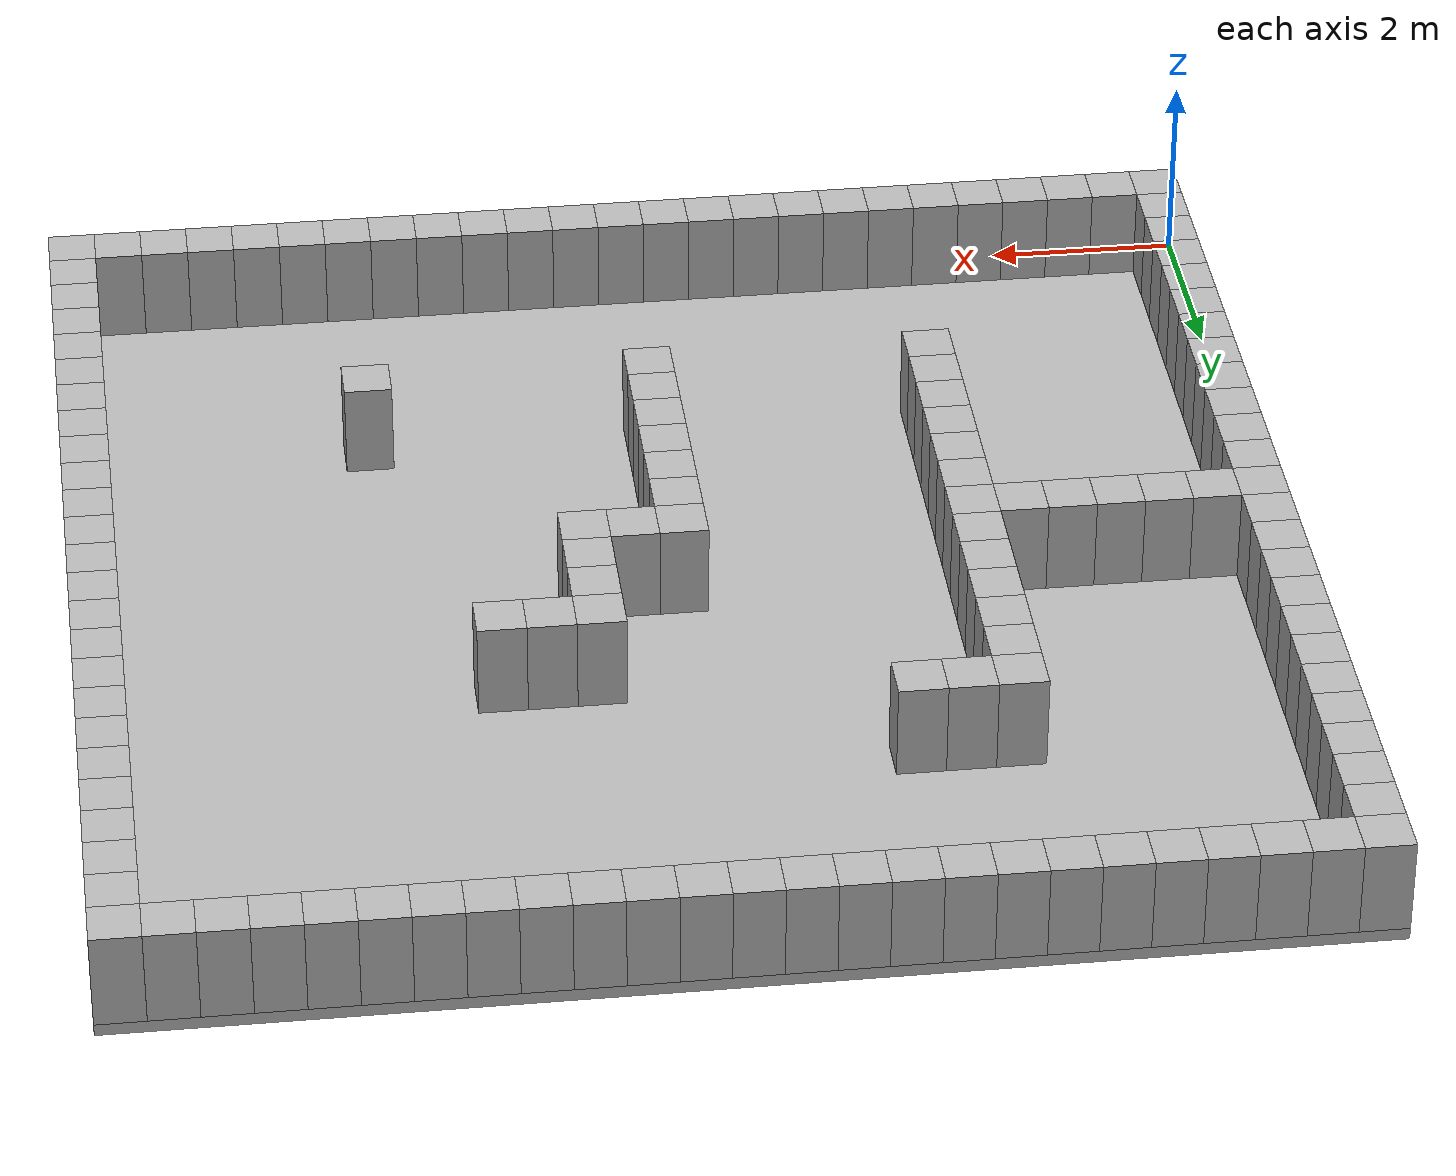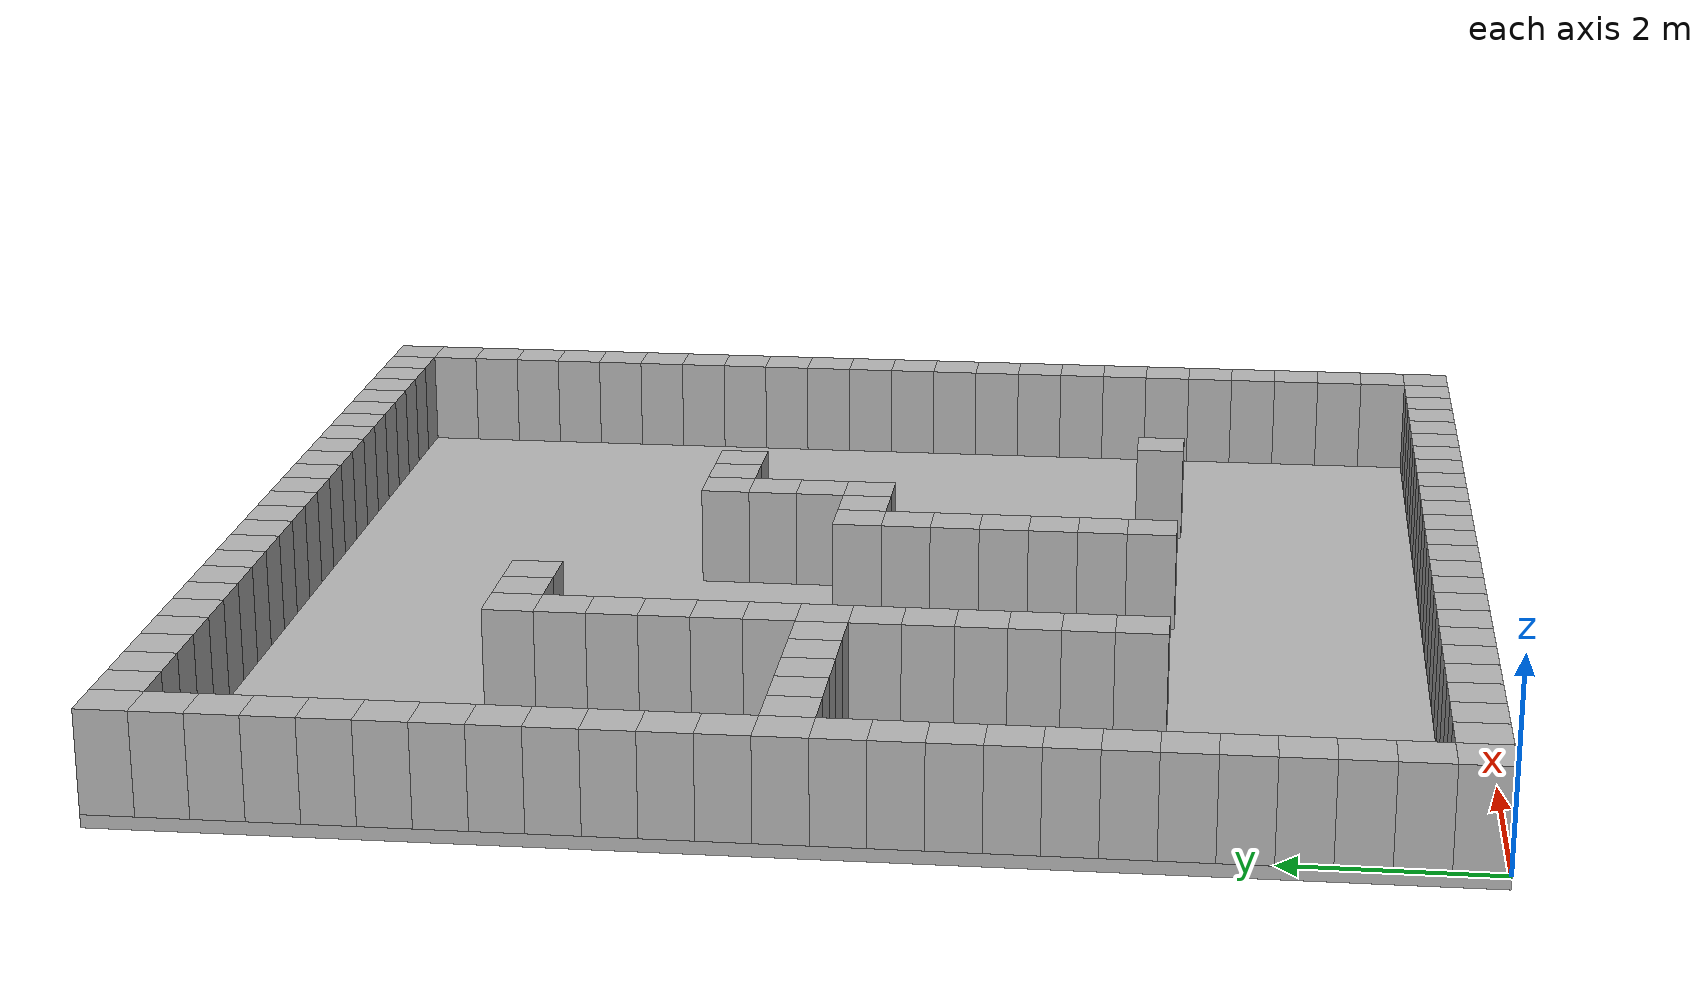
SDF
<sdf version="1.4">
  <world name="default">
    <light name="sun" type="directional">
      <cast_shadows>1</cast_shadows>
      <diffuse>0.8 0.8 0.8 1</diffuse>
      <specular>0.1 0.1 0.1 1</specular>
      <attenuation>
        <range>1000</range>
        <constant>0.9</constant>
        <linear>0.01</linear>
        <quadratic>0.001</quadratic>
      </attenuation>
      <direction>-0.5 0.5 -1</direction>
    </light>
    <model name="floor">
      <pose>6.25 6.25 -0.0625 0 0 0</pose>
      <static>true</static>
      <link name="link">
        <collision name="collision">
          <geometry>
            <box>
              <size>12.5 12.5 0.125</size>
            </box>
          </geometry>
        </collision>
        <visual name="visual">
          <geometry>
            <box>
              <size>12.5 12.5 0.125</size>
            </box>
          </geometry>
        </visual>
      </link>
    </model>
    <model name="box_0_0">
      <pose>0.25 0.25 0.5 0 0 0</pose>
      <static>true</static>
      <link name="link">
        <collision name="collision">
          <geometry>
            <box>
              <size>0.5 0.5 1.0</size>
            </box>
          </geometry>
        </collision>
        <visual name="visual">
          <geometry>
            <box>
              <size>0.5 0.5 1.0</size>
            </box>
          </geometry>
        </visual>
      </link>
    </model>
    <model name="box_0_1">
      <pose>0.25 0.75 0.5 0 0 0</pose>
      <static>true</static>
      <link name="link">
        <collision name="collision">
          <geometry>
            <box>
              <size>0.5 0.5 1.0</size>
            </box>
          </geometry>
        </collision>
        <visual name="visual">
          <geometry>
            <box>
              <size>0.5 0.5 1.0</size>
            </box>
          </geometry>
        </visual>
      </link>
    </model>
    <model name="box_0_2">
      <pose>0.25 1.25 0.5 0 0 0</pose>
      <static>true</static>
      <link name="link">
        <collision name="collision">
          <geometry>
            <box>
              <size>0.5 0.5 1.0</size>
            </box>
          </geometry>
        </collision>
        <visual name="visual">
          <geometry>
            <box>
              <size>0.5 0.5 1.0</size>
            </box>
          </geometry>
        </visual>
      </link>
    </model>
    <model name="box_0_3">
      <pose>0.25 1.75 0.5 0 0 0</pose>
      <static>true</static>
      <link name="link">
        <collision name="collision">
          <geometry>
            <box>
              <size>0.5 0.5 1.0</size>
            </box>
          </geometry>
        </collision>
        <visual name="visual">
          <geometry>
            <box>
              <size>0.5 0.5 1.0</size>
            </box>
          </geometry>
        </visual>
      </link>
    </model>
    <model name="box_0_4">
      <pose>0.25 2.25 0.5 0 0 0</pose>
      <static>true</static>
      <link name="link">
        <collision name="collision">
          <geometry>
            <box>
              <size>0.5 0.5 1.0</size>
            </box>
          </geometry>
        </collision>
        <visual name="visual">
          <geometry>
            <box>
              <size>0.5 0.5 1.0</size>
            </box>
          </geometry>
        </visual>
      </link>
    </model>
    <model name="box_0_5">
      <pose>0.25 2.75 0.5 0 0 0</pose>
      <static>true</static>
      <link name="link">
        <collision name="collision">
          <geometry>
            <box>
              <size>0.5 0.5 1.0</size>
            </box>
          </geometry>
        </collision>
        <visual name="visual">
          <geometry>
            <box>
              <size>0.5 0.5 1.0</size>
            </box>
          </geometry>
        </visual>
      </link>
    </model>
    <model name="box_0_6">
      <pose>0.25 3.25 0.5 0 0 0</pose>
      <static>true</static>
      <link name="link">
        <collision name="collision">
          <geometry>
            <box>
              <size>0.5 0.5 1.0</size>
            </box>
          </geometry>
        </collision>
        <visual name="visual">
          <geometry>
            <box>
              <size>0.5 0.5 1.0</size>
            </box>
          </geometry>
        </visual>
      </link>
    </model>
    <model name="box_0_7">
      <pose>0.25 3.75 0.5 0 0 0</pose>
      <static>true</static>
      <link name="link">
        <collision name="collision">
          <geometry>
            <box>
              <size>0.5 0.5 1.0</size>
            </box>
          </geometry>
        </collision>
        <visual name="visual">
          <geometry>
            <box>
              <size>0.5 0.5 1.0</size>
            </box>
          </geometry>
        </visual>
      </link>
    </model>
    <model name="box_0_8">
      <pose>0.25 4.25 0.5 0 0 0</pose>
      <static>true</static>
      <link name="link">
        <collision name="collision">
          <geometry>
            <box>
              <size>0.5 0.5 1.0</size>
            </box>
          </geometry>
        </collision>
        <visual name="visual">
          <geometry>
            <box>
              <size>0.5 0.5 1.0</size>
            </box>
          </geometry>
        </visual>
      </link>
    </model>
    <model name="box_0_9">
      <pose>0.25 4.75 0.5 0 0 0</pose>
      <static>true</static>
      <link name="link">
        <collision name="collision">
          <geometry>
            <box>
              <size>0.5 0.5 1.0</size>
            </box>
          </geometry>
        </collision>
        <visual name="visual">
          <geometry>
            <box>
              <size>0.5 0.5 1.0</size>
            </box>
          </geometry>
        </visual>
      </link>
    </model>
    <model name="box_0_10">
      <pose>0.25 5.25 0.5 0 0 0</pose>
      <static>true</static>
      <link name="link">
        <collision name="collision">
          <geometry>
            <box>
              <size>0.5 0.5 1.0</size>
            </box>
          </geometry>
        </collision>
        <visual name="visual">
          <geometry>
            <box>
              <size>0.5 0.5 1.0</size>
            </box>
          </geometry>
        </visual>
      </link>
    </model>
    <model name="box_0_11">
      <pose>0.25 5.75 0.5 0 0 0</pose>
      <static>true</static>
      <link name="link">
        <collision name="collision">
          <geometry>
            <box>
              <size>0.5 0.5 1.0</size>
            </box>
          </geometry>
        </collision>
        <visual name="visual">
          <geometry>
            <box>
              <size>0.5 0.5 1.0</size>
            </box>
          </geometry>
        </visual>
      </link>
    </model>
    <model name="box_0_12">
      <pose>0.25 6.25 0.5 0 0 0</pose>
      <static>true</static>
      <link name="link">
        <collision name="collision">
          <geometry>
            <box>
              <size>0.5 0.5 1.0</size>
            </box>
          </geometry>
        </collision>
        <visual name="visual">
          <geometry>
            <box>
              <size>0.5 0.5 1.0</size>
            </box>
          </geometry>
        </visual>
      </link>
    </model>
    <model name="box_0_13">
      <pose>0.25 6.75 0.5 0 0 0</pose>
      <static>true</static>
      <link name="link">
        <collision name="collision">
          <geometry>
            <box>
              <size>0.5 0.5 1.0</size>
            </box>
          </geometry>
        </collision>
        <visual name="visual">
          <geometry>
            <box>
              <size>0.5 0.5 1.0</size>
            </box>
          </geometry>
        </visual>
      </link>
    </model>
    <model name="box_0_14">
      <pose>0.25 7.25 0.5 0 0 0</pose>
      <static>true</static>
      <link name="link">
        <collision name="collision">
          <geometry>
            <box>
              <size>0.5 0.5 1.0</size>
            </box>
          </geometry>
        </collision>
        <visual name="visual">
          <geometry>
            <box>
              <size>0.5 0.5 1.0</size>
            </box>
          </geometry>
        </visual>
      </link>
    </model>
    <model name="box_0_15">
      <pose>0.25 7.75 0.5 0 0 0</pose>
      <static>true</static>
      <link name="link">
        <collision name="collision">
          <geometry>
            <box>
              <size>0.5 0.5 1.0</size>
            </box>
          </geometry>
        </collision>
        <visual name="visual">
          <geometry>
            <box>
              <size>0.5 0.5 1.0</size>
            </box>
          </geometry>
        </visual>
      </link>
    </model>
    <model name="box_0_16">
      <pose>0.25 8.25 0.5 0 0 0</pose>
      <static>true</static>
      <link name="link">
        <collision name="collision">
          <geometry>
            <box>
              <size>0.5 0.5 1.0</size>
            </box>
          </geometry>
        </collision>
        <visual name="visual">
          <geometry>
            <box>
              <size>0.5 0.5 1.0</size>
            </box>
          </geometry>
        </visual>
      </link>
    </model>
    <model name="box_0_17">
      <pose>0.25 8.75 0.5 0 0 0</pose>
      <static>true</static>
      <link name="link">
        <collision name="collision">
          <geometry>
            <box>
              <size>0.5 0.5 1.0</size>
            </box>
          </geometry>
        </collision>
        <visual name="visual">
          <geometry>
            <box>
              <size>0.5 0.5 1.0</size>
            </box>
          </geometry>
        </visual>
      </link>
    </model>
    <model name="box_0_18">
      <pose>0.25 9.25 0.5 0 0 0</pose>
      <static>true</static>
      <link name="link">
        <collision name="collision">
          <geometry>
            <box>
              <size>0.5 0.5 1.0</size>
            </box>
          </geometry>
        </collision>
        <visual name="visual">
          <geometry>
            <box>
              <size>0.5 0.5 1.0</size>
            </box>
          </geometry>
        </visual>
      </link>
    </model>
    <model name="box_0_19">
      <pose>0.25 9.75 0.5 0 0 0</pose>
      <static>true</static>
      <link name="link">
        <collision name="collision">
          <geometry>
            <box>
              <size>0.5 0.5 1.0</size>
            </box>
          </geometry>
        </collision>
        <visual name="visual">
          <geometry>
            <box>
              <size>0.5 0.5 1.0</size>
            </box>
          </geometry>
        </visual>
      </link>
    </model>
    <model name="box_0_20">
      <pose>0.25 10.25 0.5 0 0 0</pose>
      <static>true</static>
      <link name="link">
        <collision name="collision">
          <geometry>
            <box>
              <size>0.5 0.5 1.0</size>
            </box>
          </geometry>
        </collision>
        <visual name="visual">
          <geometry>
            <box>
              <size>0.5 0.5 1.0</size>
            </box>
          </geometry>
        </visual>
      </link>
    </model>
    <model name="box_0_21">
      <pose>0.25 10.75 0.5 0 0 0</pose>
      <static>true</static>
      <link name="link">
        <collision name="collision">
          <geometry>
            <box>
              <size>0.5 0.5 1.0</size>
            </box>
          </geometry>
        </collision>
        <visual name="visual">
          <geometry>
            <box>
              <size>0.5 0.5 1.0</size>
            </box>
          </geometry>
        </visual>
      </link>
    </model>
    <model name="box_0_22">
      <pose>0.25 11.25 0.5 0 0 0</pose>
      <static>true</static>
      <link name="link">
        <collision name="collision">
          <geometry>
            <box>
              <size>0.5 0.5 1.0</size>
            </box>
          </geometry>
        </collision>
        <visual name="visual">
          <geometry>
            <box>
              <size>0.5 0.5 1.0</size>
            </box>
          </geometry>
        </visual>
      </link>
    </model>
    <model name="box_0_23">
      <pose>0.25 11.75 0.5 0 0 0</pose>
      <static>true</static>
      <link name="link">
        <collision name="collision">
          <geometry>
            <box>
              <size>0.5 0.5 1.0</size>
            </box>
          </geometry>
        </collision>
        <visual name="visual">
          <geometry>
            <box>
              <size>0.5 0.5 1.0</size>
            </box>
          </geometry>
        </visual>
      </link>
    </model>
    <model name="box_0_24">
      <pose>0.25 12.25 0.5 0 0 0</pose>
      <static>true</static>
      <link name="link">
        <collision name="collision">
          <geometry>
            <box>
              <size>0.5 0.5 1.0</size>
            </box>
          </geometry>
        </collision>
        <visual name="visual">
          <geometry>
            <box>
              <size>0.5 0.5 1.0</size>
            </box>
          </geometry>
        </visual>
      </link>
    </model>
    <model name="box_1_0">
      <pose>0.75 0.25 0.5 0 0 0</pose>
      <static>true</static>
      <link name="link">
        <collision name="collision">
          <geometry>
            <box>
              <size>0.5 0.5 1.0</size>
            </box>
          </geometry>
        </collision>
        <visual name="visual">
          <geometry>
            <box>
              <size>0.5 0.5 1.0</size>
            </box>
          </geometry>
        </visual>
      </link>
    </model>
    <model name="box_1_12">
      <pose>0.75 6.25 0.5 0 0 0</pose>
      <static>true</static>
      <link name="link">
        <collision name="collision">
          <geometry>
            <box>
              <size>0.5 0.5 1.0</size>
            </box>
          </geometry>
        </collision>
        <visual name="visual">
          <geometry>
            <box>
              <size>0.5 0.5 1.0</size>
            </box>
          </geometry>
        </visual>
      </link>
    </model>
    <model name="box_1_24">
      <pose>0.75 12.25 0.5 0 0 0</pose>
      <static>true</static>
      <link name="link">
        <collision name="collision">
          <geometry>
            <box>
              <size>0.5 0.5 1.0</size>
            </box>
          </geometry>
        </collision>
        <visual name="visual">
          <geometry>
            <box>
              <size>0.5 0.5 1.0</size>
            </box>
          </geometry>
        </visual>
      </link>
    </model>
    <model name="box_2_0">
      <pose>1.25 0.25 0.5 0 0 0</pose>
      <static>true</static>
      <link name="link">
        <collision name="collision">
          <geometry>
            <box>
              <size>0.5 0.5 1.0</size>
            </box>
          </geometry>
        </collision>
        <visual name="visual">
          <geometry>
            <box>
              <size>0.5 0.5 1.0</size>
            </box>
          </geometry>
        </visual>
      </link>
    </model>
    <model name="box_2_12">
      <pose>1.25 6.25 0.5 0 0 0</pose>
      <static>true</static>
      <link name="link">
        <collision name="collision">
          <geometry>
            <box>
              <size>0.5 0.5 1.0</size>
            </box>
          </geometry>
        </collision>
        <visual name="visual">
          <geometry>
            <box>
              <size>0.5 0.5 1.0</size>
            </box>
          </geometry>
        </visual>
      </link>
    </model>
    <model name="box_2_24">
      <pose>1.25 12.25 0.5 0 0 0</pose>
      <static>true</static>
      <link name="link">
        <collision name="collision">
          <geometry>
            <box>
              <size>0.5 0.5 1.0</size>
            </box>
          </geometry>
        </collision>
        <visual name="visual">
          <geometry>
            <box>
              <size>0.5 0.5 1.0</size>
            </box>
          </geometry>
        </visual>
      </link>
    </model>
    <model name="box_3_0">
      <pose>1.75 0.25 0.5 0 0 0</pose>
      <static>true</static>
      <link name="link">
        <collision name="collision">
          <geometry>
            <box>
              <size>0.5 0.5 1.0</size>
            </box>
          </geometry>
        </collision>
        <visual name="visual">
          <geometry>
            <box>
              <size>0.5 0.5 1.0</size>
            </box>
          </geometry>
        </visual>
      </link>
    </model>
    <model name="box_3_12">
      <pose>1.75 6.25 0.5 0 0 0</pose>
      <static>true</static>
      <link name="link">
        <collision name="collision">
          <geometry>
            <box>
              <size>0.5 0.5 1.0</size>
            </box>
          </geometry>
        </collision>
        <visual name="visual">
          <geometry>
            <box>
              <size>0.5 0.5 1.0</size>
            </box>
          </geometry>
        </visual>
      </link>
    </model>
    <model name="box_3_24">
      <pose>1.75 12.25 0.5 0 0 0</pose>
      <static>true</static>
      <link name="link">
        <collision name="collision">
          <geometry>
            <box>
              <size>0.5 0.5 1.0</size>
            </box>
          </geometry>
        </collision>
        <visual name="visual">
          <geometry>
            <box>
              <size>0.5 0.5 1.0</size>
            </box>
          </geometry>
        </visual>
      </link>
    </model>
    <model name="box_4_0">
      <pose>2.25 0.25 0.5 0 0 0</pose>
      <static>true</static>
      <link name="link">
        <collision name="collision">
          <geometry>
            <box>
              <size>0.5 0.5 1.0</size>
            </box>
          </geometry>
        </collision>
        <visual name="visual">
          <geometry>
            <box>
              <size>0.5 0.5 1.0</size>
            </box>
          </geometry>
        </visual>
      </link>
    </model>
    <model name="box_4_12">
      <pose>2.25 6.25 0.5 0 0 0</pose>
      <static>true</static>
      <link name="link">
        <collision name="collision">
          <geometry>
            <box>
              <size>0.5 0.5 1.0</size>
            </box>
          </geometry>
        </collision>
        <visual name="visual">
          <geometry>
            <box>
              <size>0.5 0.5 1.0</size>
            </box>
          </geometry>
        </visual>
      </link>
    </model>
    <model name="box_4_24">
      <pose>2.25 12.25 0.5 0 0 0</pose>
      <static>true</static>
      <link name="link">
        <collision name="collision">
          <geometry>
            <box>
              <size>0.5 0.5 1.0</size>
            </box>
          </geometry>
        </collision>
        <visual name="visual">
          <geometry>
            <box>
              <size>0.5 0.5 1.0</size>
            </box>
          </geometry>
        </visual>
      </link>
    </model>
    <model name="box_5_0">
      <pose>2.75 0.25 0.5 0 0 0</pose>
      <static>true</static>
      <link name="link">
        <collision name="collision">
          <geometry>
            <box>
              <size>0.5 0.5 1.0</size>
            </box>
          </geometry>
        </collision>
        <visual name="visual">
          <geometry>
            <box>
              <size>0.5 0.5 1.0</size>
            </box>
          </geometry>
        </visual>
      </link>
    </model>
    <model name="box_5_12">
      <pose>2.75 6.25 0.5 0 0 0</pose>
      <static>true</static>
      <link name="link">
        <collision name="collision">
          <geometry>
            <box>
              <size>0.5 0.5 1.0</size>
            </box>
          </geometry>
        </collision>
        <visual name="visual">
          <geometry>
            <box>
              <size>0.5 0.5 1.0</size>
            </box>
          </geometry>
        </visual>
      </link>
    </model>
    <model name="box_5_24">
      <pose>2.75 12.25 0.5 0 0 0</pose>
      <static>true</static>
      <link name="link">
        <collision name="collision">
          <geometry>
            <box>
              <size>0.5 0.5 1.0</size>
            </box>
          </geometry>
        </collision>
        <visual name="visual">
          <geometry>
            <box>
              <size>0.5 0.5 1.0</size>
            </box>
          </geometry>
        </visual>
      </link>
    </model>
    <model name="box_6_0">
      <pose>3.25 0.25 0.5 0 0 0</pose>
      <static>true</static>
      <link name="link">
        <collision name="collision">
          <geometry>
            <box>
              <size>0.5 0.5 1.0</size>
            </box>
          </geometry>
        </collision>
        <visual name="visual">
          <geometry>
            <box>
              <size>0.5 0.5 1.0</size>
            </box>
          </geometry>
        </visual>
      </link>
    </model>
    <model name="box_6_6">
      <pose>3.25 3.25 0.5 0 0 0</pose>
      <static>true</static>
      <link name="link">
        <collision name="collision">
          <geometry>
            <box>
              <size>0.5 0.5 1.0</size>
            </box>
          </geometry>
        </collision>
        <visual name="visual">
          <geometry>
            <box>
              <size>0.5 0.5 1.0</size>
            </box>
          </geometry>
        </visual>
      </link>
    </model>
    <model name="box_6_7">
      <pose>3.25 3.75 0.5 0 0 0</pose>
      <static>true</static>
      <link name="link">
        <collision name="collision">
          <geometry>
            <box>
              <size>0.5 0.5 1.0</size>
            </box>
          </geometry>
        </collision>
        <visual name="visual">
          <geometry>
            <box>
              <size>0.5 0.5 1.0</size>
            </box>
          </geometry>
        </visual>
      </link>
    </model>
    <model name="box_6_8">
      <pose>3.25 4.25 0.5 0 0 0</pose>
      <static>true</static>
      <link name="link">
        <collision name="collision">
          <geometry>
            <box>
              <size>0.5 0.5 1.0</size>
            </box>
          </geometry>
        </collision>
        <visual name="visual">
          <geometry>
            <box>
              <size>0.5 0.5 1.0</size>
            </box>
          </geometry>
        </visual>
      </link>
    </model>
    <model name="box_6_9">
      <pose>3.25 4.75 0.5 0 0 0</pose>
      <static>true</static>
      <link name="link">
        <collision name="collision">
          <geometry>
            <box>
              <size>0.5 0.5 1.0</size>
            </box>
          </geometry>
        </collision>
        <visual name="visual">
          <geometry>
            <box>
              <size>0.5 0.5 1.0</size>
            </box>
          </geometry>
        </visual>
      </link>
    </model>
    <model name="box_6_10">
      <pose>3.25 5.25 0.5 0 0 0</pose>
      <static>true</static>
      <link name="link">
        <collision name="collision">
          <geometry>
            <box>
              <size>0.5 0.5 1.0</size>
            </box>
          </geometry>
        </collision>
        <visual name="visual">
          <geometry>
            <box>
              <size>0.5 0.5 1.0</size>
            </box>
          </geometry>
        </visual>
      </link>
    </model>
    <model name="box_6_11">
      <pose>3.25 5.75 0.5 0 0 0</pose>
      <static>true</static>
      <link name="link">
        <collision name="collision">
          <geometry>
            <box>
              <size>0.5 0.5 1.0</size>
            </box>
          </geometry>
        </collision>
        <visual name="visual">
          <geometry>
            <box>
              <size>0.5 0.5 1.0</size>
            </box>
          </geometry>
        </visual>
      </link>
    </model>
    <model name="box_6_12">
      <pose>3.25 6.25 0.5 0 0 0</pose>
      <static>true</static>
      <link name="link">
        <collision name="collision">
          <geometry>
            <box>
              <size>0.5 0.5 1.0</size>
            </box>
          </geometry>
        </collision>
        <visual name="visual">
          <geometry>
            <box>
              <size>0.5 0.5 1.0</size>
            </box>
          </geometry>
        </visual>
      </link>
    </model>
    <model name="box_6_13">
      <pose>3.25 6.75 0.5 0 0 0</pose>
      <static>true</static>
      <link name="link">
        <collision name="collision">
          <geometry>
            <box>
              <size>0.5 0.5 1.0</size>
            </box>
          </geometry>
        </collision>
        <visual name="visual">
          <geometry>
            <box>
              <size>0.5 0.5 1.0</size>
            </box>
          </geometry>
        </visual>
      </link>
    </model>
    <model name="box_6_14">
      <pose>3.25 7.25 0.5 0 0 0</pose>
      <static>true</static>
      <link name="link">
        <collision name="collision">
          <geometry>
            <box>
              <size>0.5 0.5 1.0</size>
            </box>
          </geometry>
        </collision>
        <visual name="visual">
          <geometry>
            <box>
              <size>0.5 0.5 1.0</size>
            </box>
          </geometry>
        </visual>
      </link>
    </model>
    <model name="box_6_15">
      <pose>3.25 7.75 0.5 0 0 0</pose>
      <static>true</static>
      <link name="link">
        <collision name="collision">
          <geometry>
            <box>
              <size>0.5 0.5 1.0</size>
            </box>
          </geometry>
        </collision>
        <visual name="visual">
          <geometry>
            <box>
              <size>0.5 0.5 1.0</size>
            </box>
          </geometry>
        </visual>
      </link>
    </model>
    <model name="box_6_16">
      <pose>3.25 8.25 0.5 0 0 0</pose>
      <static>true</static>
      <link name="link">
        <collision name="collision">
          <geometry>
            <box>
              <size>0.5 0.5 1.0</size>
            </box>
          </geometry>
        </collision>
        <visual name="visual">
          <geometry>
            <box>
              <size>0.5 0.5 1.0</size>
            </box>
          </geometry>
        </visual>
      </link>
    </model>
    <model name="box_6_17">
      <pose>3.25 8.75 0.5 0 0 0</pose>
      <static>true</static>
      <link name="link">
        <collision name="collision">
          <geometry>
            <box>
              <size>0.5 0.5 1.0</size>
            </box>
          </geometry>
        </collision>
        <visual name="visual">
          <geometry>
            <box>
              <size>0.5 0.5 1.0</size>
            </box>
          </geometry>
        </visual>
      </link>
    </model>
    <model name="box_6_18">
      <pose>3.25 9.25 0.5 0 0 0</pose>
      <static>true</static>
      <link name="link">
        <collision name="collision">
          <geometry>
            <box>
              <size>0.5 0.5 1.0</size>
            </box>
          </geometry>
        </collision>
        <visual name="visual">
          <geometry>
            <box>
              <size>0.5 0.5 1.0</size>
            </box>
          </geometry>
        </visual>
      </link>
    </model>
    <model name="box_6_24">
      <pose>3.25 12.25 0.5 0 0 0</pose>
      <static>true</static>
      <link name="link">
        <collision name="collision">
          <geometry>
            <box>
              <size>0.5 0.5 1.0</size>
            </box>
          </geometry>
        </collision>
        <visual name="visual">
          <geometry>
            <box>
              <size>0.5 0.5 1.0</size>
            </box>
          </geometry>
        </visual>
      </link>
    </model>
    <model name="box_7_0">
      <pose>3.75 0.25 0.5 0 0 0</pose>
      <static>true</static>
      <link name="link">
        <collision name="collision">
          <geometry>
            <box>
              <size>0.5 0.5 1.0</size>
            </box>
          </geometry>
        </collision>
        <visual name="visual">
          <geometry>
            <box>
              <size>0.5 0.5 1.0</size>
            </box>
          </geometry>
        </visual>
      </link>
    </model>
    <model name="box_7_18">
      <pose>3.75 9.25 0.5 0 0 0</pose>
      <static>true</static>
      <link name="link">
        <collision name="collision">
          <geometry>
            <box>
              <size>0.5 0.5 1.0</size>
            </box>
          </geometry>
        </collision>
        <visual name="visual">
          <geometry>
            <box>
              <size>0.5 0.5 1.0</size>
            </box>
          </geometry>
        </visual>
      </link>
    </model>
    <model name="box_7_24">
      <pose>3.75 12.25 0.5 0 0 0</pose>
      <static>true</static>
      <link name="link">
        <collision name="collision">
          <geometry>
            <box>
              <size>0.5 0.5 1.0</size>
            </box>
          </geometry>
        </collision>
        <visual name="visual">
          <geometry>
            <box>
              <size>0.5 0.5 1.0</size>
            </box>
          </geometry>
        </visual>
      </link>
    </model>
    <model name="box_8_0">
      <pose>4.25 0.25 0.5 0 0 0</pose>
      <static>true</static>
      <link name="link">
        <collision name="collision">
          <geometry>
            <box>
              <size>0.5 0.5 1.0</size>
            </box>
          </geometry>
        </collision>
        <visual name="visual">
          <geometry>
            <box>
              <size>0.5 0.5 1.0</size>
            </box>
          </geometry>
        </visual>
      </link>
    </model>
    <model name="box_8_18">
      <pose>4.25 9.25 0.5 0 0 0</pose>
      <static>true</static>
      <link name="link">
        <collision name="collision">
          <geometry>
            <box>
              <size>0.5 0.5 1.0</size>
            </box>
          </geometry>
        </collision>
        <visual name="visual">
          <geometry>
            <box>
              <size>0.5 0.5 1.0</size>
            </box>
          </geometry>
        </visual>
      </link>
    </model>
    <model name="box_8_24">
      <pose>4.25 12.25 0.5 0 0 0</pose>
      <static>true</static>
      <link name="link">
        <collision name="collision">
          <geometry>
            <box>
              <size>0.5 0.5 1.0</size>
            </box>
          </geometry>
        </collision>
        <visual name="visual">
          <geometry>
            <box>
              <size>0.5 0.5 1.0</size>
            </box>
          </geometry>
        </visual>
      </link>
    </model>
    <model name="box_9_0">
      <pose>4.75 0.25 0.5 0 0 0</pose>
      <static>true</static>
      <link name="link">
        <collision name="collision">
          <geometry>
            <box>
              <size>0.5 0.5 1.0</size>
            </box>
          </geometry>
        </collision>
        <visual name="visual">
          <geometry>
            <box>
              <size>0.5 0.5 1.0</size>
            </box>
          </geometry>
        </visual>
      </link>
    </model>
    <model name="box_9_24">
      <pose>4.75 12.25 0.5 0 0 0</pose>
      <static>true</static>
      <link name="link">
        <collision name="collision">
          <geometry>
            <box>
              <size>0.5 0.5 1.0</size>
            </box>
          </geometry>
        </collision>
        <visual name="visual">
          <geometry>
            <box>
              <size>0.5 0.5 1.0</size>
            </box>
          </geometry>
        </visual>
      </link>
    </model>
    <model name="box_10_0">
      <pose>5.25 0.25 0.5 0 0 0</pose>
      <static>true</static>
      <link name="link">
        <collision name="collision">
          <geometry>
            <box>
              <size>0.5 0.5 1.0</size>
            </box>
          </geometry>
        </collision>
        <visual name="visual">
          <geometry>
            <box>
              <size>0.5 0.5 1.0</size>
            </box>
          </geometry>
        </visual>
      </link>
    </model>
    <model name="box_10_24">
      <pose>5.25 12.25 0.5 0 0 0</pose>
      <static>true</static>
      <link name="link">
        <collision name="collision">
          <geometry>
            <box>
              <size>0.5 0.5 1.0</size>
            </box>
          </geometry>
        </collision>
        <visual name="visual">
          <geometry>
            <box>
              <size>0.5 0.5 1.0</size>
            </box>
          </geometry>
        </visual>
      </link>
    </model>
    <model name="box_11_0">
      <pose>5.75 0.25 0.5 0 0 0</pose>
      <static>true</static>
      <link name="link">
        <collision name="collision">
          <geometry>
            <box>
              <size>0.5 0.5 1.0</size>
            </box>
          </geometry>
        </collision>
        <visual name="visual">
          <geometry>
            <box>
              <size>0.5 0.5 1.0</size>
            </box>
          </geometry>
        </visual>
      </link>
    </model>
    <model name="box_11_24">
      <pose>5.75 12.25 0.5 0 0 0</pose>
      <static>true</static>
      <link name="link">
        <collision name="collision">
          <geometry>
            <box>
              <size>0.5 0.5 1.0</size>
            </box>
          </geometry>
        </collision>
        <visual name="visual">
          <geometry>
            <box>
              <size>0.5 0.5 1.0</size>
            </box>
          </geometry>
        </visual>
      </link>
    </model>
    <model name="box_12_0">
      <pose>6.25 0.25 0.5 0 0 0</pose>
      <static>true</static>
      <link name="link">
        <collision name="collision">
          <geometry>
            <box>
              <size>0.5 0.5 1.0</size>
            </box>
          </geometry>
        </collision>
        <visual name="visual">
          <geometry>
            <box>
              <size>0.5 0.5 1.0</size>
            </box>
          </geometry>
        </visual>
      </link>
    </model>
    <model name="box_12_6">
      <pose>6.25 3.25 0.5 0 0 0</pose>
      <static>true</static>
      <link name="link">
        <collision name="collision">
          <geometry>
            <box>
              <size>0.5 0.5 1.0</size>
            </box>
          </geometry>
        </collision>
        <visual name="visual">
          <geometry>
            <box>
              <size>0.5 0.5 1.0</size>
            </box>
          </geometry>
        </visual>
      </link>
    </model>
    <model name="box_12_7">
      <pose>6.25 3.75 0.5 0 0 0</pose>
      <static>true</static>
      <link name="link">
        <collision name="collision">
          <geometry>
            <box>
              <size>0.5 0.5 1.0</size>
            </box>
          </geometry>
        </collision>
        <visual name="visual">
          <geometry>
            <box>
              <size>0.5 0.5 1.0</size>
            </box>
          </geometry>
        </visual>
      </link>
    </model>
    <model name="box_12_8">
      <pose>6.25 4.25 0.5 0 0 0</pose>
      <static>true</static>
      <link name="link">
        <collision name="collision">
          <geometry>
            <box>
              <size>0.5 0.5 1.0</size>
            </box>
          </geometry>
        </collision>
        <visual name="visual">
          <geometry>
            <box>
              <size>0.5 0.5 1.0</size>
            </box>
          </geometry>
        </visual>
      </link>
    </model>
    <model name="box_12_9">
      <pose>6.25 4.75 0.5 0 0 0</pose>
      <static>true</static>
      <link name="link">
        <collision name="collision">
          <geometry>
            <box>
              <size>0.5 0.5 1.0</size>
            </box>
          </geometry>
        </collision>
        <visual name="visual">
          <geometry>
            <box>
              <size>0.5 0.5 1.0</size>
            </box>
          </geometry>
        </visual>
      </link>
    </model>
    <model name="box_12_10">
      <pose>6.25 5.25 0.5 0 0 0</pose>
      <static>true</static>
      <link name="link">
        <collision name="collision">
          <geometry>
            <box>
              <size>0.5 0.5 1.0</size>
            </box>
          </geometry>
        </collision>
        <visual name="visual">
          <geometry>
            <box>
              <size>0.5 0.5 1.0</size>
            </box>
          </geometry>
        </visual>
      </link>
    </model>
    <model name="box_12_11">
      <pose>6.25 5.75 0.5 0 0 0</pose>
      <static>true</static>
      <link name="link">
        <collision name="collision">
          <geometry>
            <box>
              <size>0.5 0.5 1.0</size>
            </box>
          </geometry>
        </collision>
        <visual name="visual">
          <geometry>
            <box>
              <size>0.5 0.5 1.0</size>
            </box>
          </geometry>
        </visual>
      </link>
    </model>
    <model name="box_12_12">
      <pose>6.25 6.25 0.5 0 0 0</pose>
      <static>true</static>
      <link name="link">
        <collision name="collision">
          <geometry>
            <box>
              <size>0.5 0.5 1.0</size>
            </box>
          </geometry>
        </collision>
        <visual name="visual">
          <geometry>
            <box>
              <size>0.5 0.5 1.0</size>
            </box>
          </geometry>
        </visual>
      </link>
    </model>
    <model name="box_12_24">
      <pose>6.25 12.25 0.5 0 0 0</pose>
      <static>true</static>
      <link name="link">
        <collision name="collision">
          <geometry>
            <box>
              <size>0.5 0.5 1.0</size>
            </box>
          </geometry>
        </collision>
        <visual name="visual">
          <geometry>
            <box>
              <size>0.5 0.5 1.0</size>
            </box>
          </geometry>
        </visual>
      </link>
    </model>
    <model name="box_13_0">
      <pose>6.75 0.25 0.5 0 0 0</pose>
      <static>true</static>
      <link name="link">
        <collision name="collision">
          <geometry>
            <box>
              <size>0.5 0.5 1.0</size>
            </box>
          </geometry>
        </collision>
        <visual name="visual">
          <geometry>
            <box>
              <size>0.5 0.5 1.0</size>
            </box>
          </geometry>
        </visual>
      </link>
    </model>
    <model name="box_13_12">
      <pose>6.75 6.25 0.5 0 0 0</pose>
      <static>true</static>
      <link name="link">
        <collision name="collision">
          <geometry>
            <box>
              <size>0.5 0.5 1.0</size>
            </box>
          </geometry>
        </collision>
        <visual name="visual">
          <geometry>
            <box>
              <size>0.5 0.5 1.0</size>
            </box>
          </geometry>
        </visual>
      </link>
    </model>
    <model name="box_13_24">
      <pose>6.75 12.25 0.5 0 0 0</pose>
      <static>true</static>
      <link name="link">
        <collision name="collision">
          <geometry>
            <box>
              <size>0.5 0.5 1.0</size>
            </box>
          </geometry>
        </collision>
        <visual name="visual">
          <geometry>
            <box>
              <size>0.5 0.5 1.0</size>
            </box>
          </geometry>
        </visual>
      </link>
    </model>
    <model name="box_14_0">
      <pose>7.25 0.25 0.5 0 0 0</pose>
      <static>true</static>
      <link name="link">
        <collision name="collision">
          <geometry>
            <box>
              <size>0.5 0.5 1.0</size>
            </box>
          </geometry>
        </collision>
        <visual name="visual">
          <geometry>
            <box>
              <size>0.5 0.5 1.0</size>
            </box>
          </geometry>
        </visual>
      </link>
    </model>
    <model name="box_14_12">
      <pose>7.25 6.25 0.5 0 0 0</pose>
      <static>true</static>
      <link name="link">
        <collision name="collision">
          <geometry>
            <box>
              <size>0.5 0.5 1.0</size>
            </box>
          </geometry>
        </collision>
        <visual name="visual">
          <geometry>
            <box>
              <size>0.5 0.5 1.0</size>
            </box>
          </geometry>
        </visual>
      </link>
    </model>
    <model name="box_14_13">
      <pose>7.25 6.75 0.5 0 0 0</pose>
      <static>true</static>
      <link name="link">
        <collision name="collision">
          <geometry>
            <box>
              <size>0.5 0.5 1.0</size>
            </box>
          </geometry>
        </collision>
        <visual name="visual">
          <geometry>
            <box>
              <size>0.5 0.5 1.0</size>
            </box>
          </geometry>
        </visual>
      </link>
    </model>
    <model name="box_14_14">
      <pose>7.25 7.25 0.5 0 0 0</pose>
      <static>true</static>
      <link name="link">
        <collision name="collision">
          <geometry>
            <box>
              <size>0.5 0.5 1.0</size>
            </box>
          </geometry>
        </collision>
        <visual name="visual">
          <geometry>
            <box>
              <size>0.5 0.5 1.0</size>
            </box>
          </geometry>
        </visual>
      </link>
    </model>
    <model name="box_14_15">
      <pose>7.25 7.75 0.5 0 0 0</pose>
      <static>true</static>
      <link name="link">
        <collision name="collision">
          <geometry>
            <box>
              <size>0.5 0.5 1.0</size>
            </box>
          </geometry>
        </collision>
        <visual name="visual">
          <geometry>
            <box>
              <size>0.5 0.5 1.0</size>
            </box>
          </geometry>
        </visual>
      </link>
    </model>
    <model name="box_14_24">
      <pose>7.25 12.25 0.5 0 0 0</pose>
      <static>true</static>
      <link name="link">
        <collision name="collision">
          <geometry>
            <box>
              <size>0.5 0.5 1.0</size>
            </box>
          </geometry>
        </collision>
        <visual name="visual">
          <geometry>
            <box>
              <size>0.5 0.5 1.0</size>
            </box>
          </geometry>
        </visual>
      </link>
    </model>
    <model name="box_15_0">
      <pose>7.75 0.25 0.5 0 0 0</pose>
      <static>true</static>
      <link name="link">
        <collision name="collision">
          <geometry>
            <box>
              <size>0.5 0.5 1.0</size>
            </box>
          </geometry>
        </collision>
        <visual name="visual">
          <geometry>
            <box>
              <size>0.5 0.5 1.0</size>
            </box>
          </geometry>
        </visual>
      </link>
    </model>
    <model name="box_15_15">
      <pose>7.75 7.75 0.5 0 0 0</pose>
      <static>true</static>
      <link name="link">
        <collision name="collision">
          <geometry>
            <box>
              <size>0.5 0.5 1.0</size>
            </box>
          </geometry>
        </collision>
        <visual name="visual">
          <geometry>
            <box>
              <size>0.5 0.5 1.0</size>
            </box>
          </geometry>
        </visual>
      </link>
    </model>
    <model name="box_15_24">
      <pose>7.75 12.25 0.5 0 0 0</pose>
      <static>true</static>
      <link name="link">
        <collision name="collision">
          <geometry>
            <box>
              <size>0.5 0.5 1.0</size>
            </box>
          </geometry>
        </collision>
        <visual name="visual">
          <geometry>
            <box>
              <size>0.5 0.5 1.0</size>
            </box>
          </geometry>
        </visual>
      </link>
    </model>
    <model name="box_16_0">
      <pose>8.25 0.25 0.5 0 0 0</pose>
      <static>true</static>
      <link name="link">
        <collision name="collision">
          <geometry>
            <box>
              <size>0.5 0.5 1.0</size>
            </box>
          </geometry>
        </collision>
        <visual name="visual">
          <geometry>
            <box>
              <size>0.5 0.5 1.0</size>
            </box>
          </geometry>
        </visual>
      </link>
    </model>
    <model name="box_16_15">
      <pose>8.25 7.75 0.5 0 0 0</pose>
      <static>true</static>
      <link name="link">
        <collision name="collision">
          <geometry>
            <box>
              <size>0.5 0.5 1.0</size>
            </box>
          </geometry>
        </collision>
        <visual name="visual">
          <geometry>
            <box>
              <size>0.5 0.5 1.0</size>
            </box>
          </geometry>
        </visual>
      </link>
    </model>
    <model name="box_16_24">
      <pose>8.25 12.25 0.5 0 0 0</pose>
      <static>true</static>
      <link name="link">
        <collision name="collision">
          <geometry>
            <box>
              <size>0.5 0.5 1.0</size>
            </box>
          </geometry>
        </collision>
        <visual name="visual">
          <geometry>
            <box>
              <size>0.5 0.5 1.0</size>
            </box>
          </geometry>
        </visual>
      </link>
    </model>
    <model name="box_17_0">
      <pose>8.75 0.25 0.5 0 0 0</pose>
      <static>true</static>
      <link name="link">
        <collision name="collision">
          <geometry>
            <box>
              <size>0.5 0.5 1.0</size>
            </box>
          </geometry>
        </collision>
        <visual name="visual">
          <geometry>
            <box>
              <size>0.5 0.5 1.0</size>
            </box>
          </geometry>
        </visual>
      </link>
    </model>
    <model name="box_17_24">
      <pose>8.75 12.25 0.5 0 0 0</pose>
      <static>true</static>
      <link name="link">
        <collision name="collision">
          <geometry>
            <box>
              <size>0.5 0.5 1.0</size>
            </box>
          </geometry>
        </collision>
        <visual name="visual">
          <geometry>
            <box>
              <size>0.5 0.5 1.0</size>
            </box>
          </geometry>
        </visual>
      </link>
    </model>
    <model name="box_18_0">
      <pose>9.25 0.25 0.5 0 0 0</pose>
      <static>true</static>
      <link name="link">
        <collision name="collision">
          <geometry>
            <box>
              <size>0.5 0.5 1.0</size>
            </box>
          </geometry>
        </collision>
        <visual name="visual">
          <geometry>
            <box>
              <size>0.5 0.5 1.0</size>
            </box>
          </geometry>
        </visual>
      </link>
    </model>
    <model name="box_18_6">
      <pose>9.25 3.25 0.5 0 0 0</pose>
      <static>true</static>
      <link name="link">
        <collision name="collision">
          <geometry>
            <box>
              <size>0.5 0.5 1.0</size>
            </box>
          </geometry>
        </collision>
        <visual name="visual">
          <geometry>
            <box>
              <size>0.5 0.5 1.0</size>
            </box>
          </geometry>
        </visual>
      </link>
    </model>
    <model name="box_18_24">
      <pose>9.25 12.25 0.5 0 0 0</pose>
      <static>true</static>
      <link name="link">
        <collision name="collision">
          <geometry>
            <box>
              <size>0.5 0.5 1.0</size>
            </box>
          </geometry>
        </collision>
        <visual name="visual">
          <geometry>
            <box>
              <size>0.5 0.5 1.0</size>
            </box>
          </geometry>
        </visual>
      </link>
    </model>
    <model name="box_19_0">
      <pose>9.75 0.25 0.5 0 0 0</pose>
      <static>true</static>
      <link name="link">
        <collision name="collision">
          <geometry>
            <box>
              <size>0.5 0.5 1.0</size>
            </box>
          </geometry>
        </collision>
        <visual name="visual">
          <geometry>
            <box>
              <size>0.5 0.5 1.0</size>
            </box>
          </geometry>
        </visual>
      </link>
    </model>
    <model name="box_19_24">
      <pose>9.75 12.25 0.5 0 0 0</pose>
      <static>true</static>
      <link name="link">
        <collision name="collision">
          <geometry>
            <box>
              <size>0.5 0.5 1.0</size>
            </box>
          </geometry>
        </collision>
        <visual name="visual">
          <geometry>
            <box>
              <size>0.5 0.5 1.0</size>
            </box>
          </geometry>
        </visual>
      </link>
    </model>
    <model name="box_20_0">
      <pose>10.25 0.25 0.5 0 0 0</pose>
      <static>true</static>
      <link name="link">
        <collision name="collision">
          <geometry>
            <box>
              <size>0.5 0.5 1.0</size>
            </box>
          </geometry>
        </collision>
        <visual name="visual">
          <geometry>
            <box>
              <size>0.5 0.5 1.0</size>
            </box>
          </geometry>
        </visual>
      </link>
    </model>
    <model name="box_20_24">
      <pose>10.25 12.25 0.5 0 0 0</pose>
      <static>true</static>
      <link name="link">
        <collision name="collision">
          <geometry>
            <box>
              <size>0.5 0.5 1.0</size>
            </box>
          </geometry>
        </collision>
        <visual name="visual">
          <geometry>
            <box>
              <size>0.5 0.5 1.0</size>
            </box>
          </geometry>
        </visual>
      </link>
    </model>
    <model name="box_21_0">
      <pose>10.75 0.25 0.5 0 0 0</pose>
      <static>true</static>
      <link name="link">
        <collision name="collision">
          <geometry>
            <box>
              <size>0.5 0.5 1.0</size>
            </box>
          </geometry>
        </collision>
        <visual name="visual">
          <geometry>
            <box>
              <size>0.5 0.5 1.0</size>
            </box>
          </geometry>
        </visual>
      </link>
    </model>
    <model name="box_21_24">
      <pose>10.75 12.25 0.5 0 0 0</pose>
      <static>true</static>
      <link name="link">
        <collision name="collision">
          <geometry>
            <box>
              <size>0.5 0.5 1.0</size>
            </box>
          </geometry>
        </collision>
        <visual name="visual">
          <geometry>
            <box>
              <size>0.5 0.5 1.0</size>
            </box>
          </geometry>
        </visual>
      </link>
    </model>
    <model name="box_22_0">
      <pose>11.25 0.25 0.5 0 0 0</pose>
      <static>true</static>
      <link name="link">
        <collision name="collision">
          <geometry>
            <box>
              <size>0.5 0.5 1.0</size>
            </box>
          </geometry>
        </collision>
        <visual name="visual">
          <geometry>
            <box>
              <size>0.5 0.5 1.0</size>
            </box>
          </geometry>
        </visual>
      </link>
    </model>
    <model name="box_22_24">
      <pose>11.25 12.25 0.5 0 0 0</pose>
      <static>true</static>
      <link name="link">
        <collision name="collision">
          <geometry>
            <box>
              <size>0.5 0.5 1.0</size>
            </box>
          </geometry>
        </collision>
        <visual name="visual">
          <geometry>
            <box>
              <size>0.5 0.5 1.0</size>
            </box>
          </geometry>
        </visual>
      </link>
    </model>
    <model name="box_23_0">
      <pose>11.75 0.25 0.5 0 0 0</pose>
      <static>true</static>
      <link name="link">
        <collision name="collision">
          <geometry>
            <box>
              <size>0.5 0.5 1.0</size>
            </box>
          </geometry>
        </collision>
        <visual name="visual">
          <geometry>
            <box>
              <size>0.5 0.5 1.0</size>
            </box>
          </geometry>
        </visual>
      </link>
    </model>
    <model name="box_23_24">
      <pose>11.75 12.25 0.5 0 0 0</pose>
      <static>true</static>
      <link name="link">
        <collision name="collision">
          <geometry>
            <box>
              <size>0.5 0.5 1.0</size>
            </box>
          </geometry>
        </collision>
        <visual name="visual">
          <geometry>
            <box>
              <size>0.5 0.5 1.0</size>
            </box>
          </geometry>
        </visual>
      </link>
    </model>
    <model name="box_24_0">
      <pose>12.25 0.25 0.5 0 0 0</pose>
      <static>true</static>
      <link name="link">
        <collision name="collision">
          <geometry>
            <box>
              <size>0.5 0.5 1.0</size>
            </box>
          </geometry>
        </collision>
        <visual name="visual">
          <geometry>
            <box>
              <size>0.5 0.5 1.0</size>
            </box>
          </geometry>
        </visual>
      </link>
    </model>
    <model name="box_24_1">
      <pose>12.25 0.75 0.5 0 0 0</pose>
      <static>true</static>
      <link name="link">
        <collision name="collision">
          <geometry>
            <box>
              <size>0.5 0.5 1.0</size>
            </box>
          </geometry>
        </collision>
        <visual name="visual">
          <geometry>
            <box>
              <size>0.5 0.5 1.0</size>
            </box>
          </geometry>
        </visual>
      </link>
    </model>
    <model name="box_24_2">
      <pose>12.25 1.25 0.5 0 0 0</pose>
      <static>true</static>
      <link name="link">
        <collision name="collision">
          <geometry>
            <box>
              <size>0.5 0.5 1.0</size>
            </box>
          </geometry>
        </collision>
        <visual name="visual">
          <geometry>
            <box>
              <size>0.5 0.5 1.0</size>
            </box>
          </geometry>
        </visual>
      </link>
    </model>
    <model name="box_24_3">
      <pose>12.25 1.75 0.5 0 0 0</pose>
      <static>true</static>
      <link name="link">
        <collision name="collision">
          <geometry>
            <box>
              <size>0.5 0.5 1.0</size>
            </box>
          </geometry>
        </collision>
        <visual name="visual">
          <geometry>
            <box>
              <size>0.5 0.5 1.0</size>
            </box>
          </geometry>
        </visual>
      </link>
    </model>
    <model name="box_24_4">
      <pose>12.25 2.25 0.5 0 0 0</pose>
      <static>true</static>
      <link name="link">
        <collision name="collision">
          <geometry>
            <box>
              <size>0.5 0.5 1.0</size>
            </box>
          </geometry>
        </collision>
        <visual name="visual">
          <geometry>
            <box>
              <size>0.5 0.5 1.0</size>
            </box>
          </geometry>
        </visual>
      </link>
    </model>
    <model name="box_24_5">
      <pose>12.25 2.75 0.5 0 0 0</pose>
      <static>true</static>
      <link name="link">
        <collision name="collision">
          <geometry>
            <box>
              <size>0.5 0.5 1.0</size>
            </box>
          </geometry>
        </collision>
        <visual name="visual">
          <geometry>
            <box>
              <size>0.5 0.5 1.0</size>
            </box>
          </geometry>
        </visual>
      </link>
    </model>
    <model name="box_24_6">
      <pose>12.25 3.25 0.5 0 0 0</pose>
      <static>true</static>
      <link name="link">
        <collision name="collision">
          <geometry>
            <box>
              <size>0.5 0.5 1.0</size>
            </box>
          </geometry>
        </collision>
        <visual name="visual">
          <geometry>
            <box>
              <size>0.5 0.5 1.0</size>
            </box>
          </geometry>
        </visual>
      </link>
    </model>
    <model name="box_24_7">
      <pose>12.25 3.75 0.5 0 0 0</pose>
      <static>true</static>
      <link name="link">
        <collision name="collision">
          <geometry>
            <box>
              <size>0.5 0.5 1.0</size>
            </box>
          </geometry>
        </collision>
        <visual name="visual">
          <geometry>
            <box>
              <size>0.5 0.5 1.0</size>
            </box>
          </geometry>
        </visual>
      </link>
    </model>
    <model name="box_24_8">
      <pose>12.25 4.25 0.5 0 0 0</pose>
      <static>true</static>
      <link name="link">
        <collision name="collision">
          <geometry>
            <box>
              <size>0.5 0.5 1.0</size>
            </box>
          </geometry>
        </collision>
        <visual name="visual">
          <geometry>
            <box>
              <size>0.5 0.5 1.0</size>
            </box>
          </geometry>
        </visual>
      </link>
    </model>
    <model name="box_24_9">
      <pose>12.25 4.75 0.5 0 0 0</pose>
      <static>true</static>
      <link name="link">
        <collision name="collision">
          <geometry>
            <box>
              <size>0.5 0.5 1.0</size>
            </box>
          </geometry>
        </collision>
        <visual name="visual">
          <geometry>
            <box>
              <size>0.5 0.5 1.0</size>
            </box>
          </geometry>
        </visual>
      </link>
    </model>
    <model name="box_24_10">
      <pose>12.25 5.25 0.5 0 0 0</pose>
      <static>true</static>
      <link name="link">
        <collision name="collision">
          <geometry>
            <box>
              <size>0.5 0.5 1.0</size>
            </box>
          </geometry>
        </collision>
        <visual name="visual">
          <geometry>
            <box>
              <size>0.5 0.5 1.0</size>
            </box>
          </geometry>
        </visual>
      </link>
    </model>
    <model name="box_24_11">
      <pose>12.25 5.75 0.5 0 0 0</pose>
      <static>true</static>
      <link name="link">
        <collision name="collision">
          <geometry>
            <box>
              <size>0.5 0.5 1.0</size>
            </box>
          </geometry>
        </collision>
        <visual name="visual">
          <geometry>
            <box>
              <size>0.5 0.5 1.0</size>
            </box>
          </geometry>
        </visual>
      </link>
    </model>
    <model name="box_24_12">
      <pose>12.25 6.25 0.5 0 0 0</pose>
      <static>true</static>
      <link name="link">
        <collision name="collision">
          <geometry>
            <box>
              <size>0.5 0.5 1.0</size>
            </box>
          </geometry>
        </collision>
        <visual name="visual">
          <geometry>
            <box>
              <size>0.5 0.5 1.0</size>
            </box>
          </geometry>
        </visual>
      </link>
    </model>
    <model name="box_24_13">
      <pose>12.25 6.75 0.5 0 0 0</pose>
      <static>true</static>
      <link name="link">
        <collision name="collision">
          <geometry>
            <box>
              <size>0.5 0.5 1.0</size>
            </box>
          </geometry>
        </collision>
        <visual name="visual">
          <geometry>
            <box>
              <size>0.5 0.5 1.0</size>
            </box>
          </geometry>
        </visual>
      </link>
    </model>
    <model name="box_24_14">
      <pose>12.25 7.25 0.5 0 0 0</pose>
      <static>true</static>
      <link name="link">
        <collision name="collision">
          <geometry>
            <box>
              <size>0.5 0.5 1.0</size>
            </box>
          </geometry>
        </collision>
        <visual name="visual">
          <geometry>
            <box>
              <size>0.5 0.5 1.0</size>
            </box>
          </geometry>
        </visual>
      </link>
    </model>
    <model name="box_24_15">
      <pose>12.25 7.75 0.5 0 0 0</pose>
      <static>true</static>
      <link name="link">
        <collision name="collision">
          <geometry>
            <box>
              <size>0.5 0.5 1.0</size>
            </box>
          </geometry>
        </collision>
        <visual name="visual">
          <geometry>
            <box>
              <size>0.5 0.5 1.0</size>
            </box>
          </geometry>
        </visual>
      </link>
    </model>
    <model name="box_24_16">
      <pose>12.25 8.25 0.5 0 0 0</pose>
      <static>true</static>
      <link name="link">
        <collision name="collision">
          <geometry>
            <box>
              <size>0.5 0.5 1.0</size>
            </box>
          </geometry>
        </collision>
        <visual name="visual">
          <geometry>
            <box>
              <size>0.5 0.5 1.0</size>
            </box>
          </geometry>
        </visual>
      </link>
    </model>
    <model name="box_24_17">
      <pose>12.25 8.75 0.5 0 0 0</pose>
      <static>true</static>
      <link name="link">
        <collision name="collision">
          <geometry>
            <box>
              <size>0.5 0.5 1.0</size>
            </box>
          </geometry>
        </collision>
        <visual name="visual">
          <geometry>
            <box>
              <size>0.5 0.5 1.0</size>
            </box>
          </geometry>
        </visual>
      </link>
    </model>
    <model name="box_24_18">
      <pose>12.25 9.25 0.5 0 0 0</pose>
      <static>true</static>
      <link name="link">
        <collision name="collision">
          <geometry>
            <box>
              <size>0.5 0.5 1.0</size>
            </box>
          </geometry>
        </collision>
        <visual name="visual">
          <geometry>
            <box>
              <size>0.5 0.5 1.0</size>
            </box>
          </geometry>
        </visual>
      </link>
    </model>
    <model name="box_24_19">
      <pose>12.25 9.75 0.5 0 0 0</pose>
      <static>true</static>
      <link name="link">
        <collision name="collision">
          <geometry>
            <box>
              <size>0.5 0.5 1.0</size>
            </box>
          </geometry>
        </collision>
        <visual name="visual">
          <geometry>
            <box>
              <size>0.5 0.5 1.0</size>
            </box>
          </geometry>
        </visual>
      </link>
    </model>
    <model name="box_24_20">
      <pose>12.25 10.25 0.5 0 0 0</pose>
      <static>true</static>
      <link name="link">
        <collision name="collision">
          <geometry>
            <box>
              <size>0.5 0.5 1.0</size>
            </box>
          </geometry>
        </collision>
        <visual name="visual">
          <geometry>
            <box>
              <size>0.5 0.5 1.0</size>
            </box>
          </geometry>
        </visual>
      </link>
    </model>
    <model name="box_24_21">
      <pose>12.25 10.75 0.5 0 0 0</pose>
      <static>true</static>
      <link name="link">
        <collision name="collision">
          <geometry>
            <box>
              <size>0.5 0.5 1.0</size>
            </box>
          </geometry>
        </collision>
        <visual name="visual">
          <geometry>
            <box>
              <size>0.5 0.5 1.0</size>
            </box>
          </geometry>
        </visual>
      </link>
    </model>
    <model name="box_24_22">
      <pose>12.25 11.25 0.5 0 0 0</pose>
      <static>true</static>
      <link name="link">
        <collision name="collision">
          <geometry>
            <box>
              <size>0.5 0.5 1.0</size>
            </box>
          </geometry>
        </collision>
        <visual name="visual">
          <geometry>
            <box>
              <size>0.5 0.5 1.0</size>
            </box>
          </geometry>
        </visual>
      </link>
    </model>
    <model name="box_24_23">
      <pose>12.25 11.75 0.5 0 0 0</pose>
      <static>true</static>
      <link name="link">
        <collision name="collision">
          <geometry>
            <box>
              <size>0.5 0.5 1.0</size>
            </box>
          </geometry>
        </collision>
        <visual name="visual">
          <geometry>
            <box>
              <size>0.5 0.5 1.0</size>
            </box>
          </geometry>
        </visual>
      </link>
    </model>
    <model name="box_24_24">
      <pose>12.25 12.25 0.5 0 0 0</pose>
      <static>true</static>
      <link name="link">
        <collision name="collision">
          <geometry>
            <box>
              <size>0.5 0.5 1.0</size>
            </box>
          </geometry>
        </collision>
        <visual name="visual">
          <geometry>
            <box>
              <size>0.5 0.5 1.0</size>
            </box>
          </geometry>
        </visual>
      </link>
    </model>
  </world>
</sdf>
